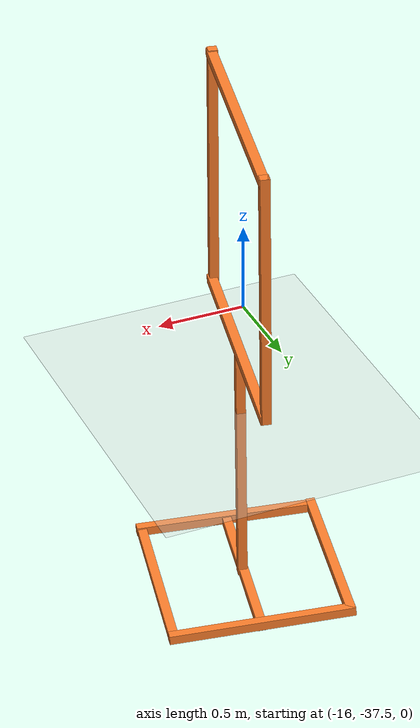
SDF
<sdf version="1.6">
 <world name="default">
  <model name="ground_plane">
   <static>1</static>
   <link name="link">
    <collision name="collision">
     <geometry><plane><normal>0 0 1</normal><size>100 100</size></plane></geometry>
     <surface><friction><ode><mu>100</mu><mu2>50</mu2></ode></friction></surface>
    </collision>
    <visual name="visual">
     <cast_shadows>0</cast_shadows>
     <geometry><plane><normal>0 0 1</normal><size>100 100</size></plane></geometry>
     <material>
      <script><uri>file://media/materials/scripts/gazebo.material</uri><name>Gazebo/Grey</name></script>
     </material>
    </visual>
    <velocity_decay><linear>0</linear><angular>0</angular></velocity_decay>
   </link>
  </model>
  <model name="closed_gate_clone_clone_0_clone">
   <link name="link">
    <inertial>
     <mass>1</mass>
     <inertia>
      <ixx>0.166667</ixx>
      <ixy>0</ixy>
      <ixz>0</ixz>
      <iyy>0.166667</iyy>
      <iyz>0</iyz>
      <izz>0.166667</izz>
     </inertia>
    </inertial>
    <pose>0.404756 -0.715724 1.41623 0 -0 0</pose>
    <visual name="visual">
     <geometry><box><size>0.05 0.05 1.4</size></box></geometry>
     <material>
      <script><name>Gazebo/Grey</name><uri>file://media/materials/scripts/gazebo.material</uri></script>
      <shader type="vertex"><normal_map>__default__</normal_map></shader>
      <ambient>0.976 0.484 0.164 1</ambient>
      <diffuse>0.976 0.484 0.164 1</diffuse>
      <specular>0.01 0.01 0.01 1</specular>
      <emissive>0 0 0 1</emissive>
     </material>
    </visual>
    <collision name="collision">
     <geometry><box><size>0.05 0.05 1.4</size></box></geometry>
     <surface>
      <friction>
       <ode><mu>1</mu><mu2>1</mu2><fdir1>0 0 0</fdir1><slip1>0</slip1><slip2>0</slip2></ode>
       <torsional>
        <coefficient>1</coefficient>
        <patch_radius>0</patch_radius>
        <surface_radius>0</surface_radius>
        <use_patch_radius>1</use_patch_radius>
        <ode><slip>0</slip></ode>
       </torsional>
      </friction>
      <bounce><restitution_coefficient>0</restitution_coefficient><threshold>1e+06</threshold></bounce>
      <contact>
       <collide_without_contact>0</collide_without_contact>
       <collide_without_contact_bitmask>1</collide_without_contact_bitmask>
       <collide_bitmask>1</collide_bitmask>
       <ode>
        <soft_cfm>0</soft_cfm>
        <soft_erp>0.2</soft_erp>
        <kp>1e+13</kp>
        <kd>1</kd>
        <max_vel>0.01</max_vel>
        <min_depth>0</min_depth>
       </ode>
       <bullet>
        <split_impulse>1</split_impulse>
        <split_impulse_penetration_threshold>-0.01</split_impulse_penetration_threshold>
        <soft_cfm>0</soft_cfm>
        <soft_erp>0.2</soft_erp>
        <kp>1e+13</kp>
        <kd>1</kd>
       </bullet>
      </contact>
     </surface>
    </collision>
   </link>
   <link name="link_clone_0_clone_0">
    <inertial>
     <mass>1</mass>
     <inertia>
      <ixx>0.166667</ixx>
      <ixy>0</ixy>
      <ixz>0</ixz>
      <iyy>0.166667</iyy>
      <iyz>0</iyz>
      <izz>0.166667</izz>
     </inertia>
    </inertial>
    <pose>1.11096 -0.693594 -0.667388 -1.57955 0.044957 -1.56415</pose>
    <visual name="visual">
     <geometry><box><size>0.05 0.05 1</size></box></geometry>
     <material>
      <script><name>Gazebo/Grey</name><uri>file://media/materials/scripts/gazebo.material</uri></script>
      <shader type="vertex"><normal_map>__default__</normal_map></shader>
      <ambient>0.976 0.484 0.164 1</ambient>
      <diffuse>0.976 0.484 0.164 1</diffuse>
      <specular>0.01 0.01 0.01 1</specular>
      <emissive>0 0 0 1</emissive>
     </material>
    </visual>
    <collision name="collision">
     <geometry><box><size>0.05 0.05 1</size></box></geometry>
     <surface>
      <friction>
       <ode><mu>1</mu><mu2>1</mu2><fdir1>0 0 0</fdir1><slip1>0</slip1><slip2>0</slip2></ode>
       <torsional>
        <coefficient>1</coefficient>
        <patch_radius>0</patch_radius>
        <surface_radius>0</surface_radius>
        <use_patch_radius>1</use_patch_radius>
        <ode><slip>0</slip></ode>
       </torsional>
      </friction>
      <bounce><restitution_coefficient>0</restitution_coefficient><threshold>1e+06</threshold></bounce>
      <contact>
       <collide_without_contact>0</collide_without_contact>
       <collide_without_contact_bitmask>1</collide_without_contact_bitmask>
       <collide_bitmask>1</collide_bitmask>
       <ode>
        <soft_cfm>0</soft_cfm>
        <soft_erp>0.2</soft_erp>
        <kp>1e+13</kp>
        <kd>1</kd>
        <max_vel>0.01</max_vel>
        <min_depth>0</min_depth>
       </ode>
       <bullet>
        <split_impulse>1</split_impulse>
        <split_impulse_penetration_threshold>-0.01</split_impulse_penetration_threshold>
        <soft_cfm>0</soft_cfm>
        <soft_erp>0.2</soft_erp>
        <kp>1e+13</kp>
        <kd>1</kd>
       </bullet>
      </contact>
     </surface>
    </collision>
   </link>
   <link name="link_clone_0_clone_0_clone">
    <inertial>
     <mass>1</mass>
     <inertia>
      <ixx>0.166667</ixx>
      <ixy>0</ixy>
      <ixz>0</ixz>
      <iyy>0.166667</iyy>
      <iyz>0</iyz>
      <izz>0.166667</izz>
     </inertia>
    </inertial>
    <pose>0.637485 -0.695511 -0.656732 -1.55146 -0.019345 0.017432</pose>
    <visual name="visual">
     <geometry><box><size>0.05 0.05 1</size></box></geometry>
     <material>
      <script><name>Gazebo/Grey</name><uri>file://media/materials/scripts/gazebo.material</uri></script>
      <shader type="vertex"><normal_map>__default__</normal_map></shader>
      <ambient>0.976 0.484 0.164 1</ambient>
      <diffuse>0.976 0.484 0.164 1</diffuse>
      <specular>0.01 0.01 0.01 1</specular>
      <emissive>0 0 0 1</emissive>
     </material>
    </visual>
    <collision name="collision">
     <geometry><box><size>0.05 0.05 1</size></box></geometry>
     <surface>
      <friction>
       <ode><mu>1</mu><mu2>1</mu2><fdir1>0 0 0</fdir1><slip1>0</slip1><slip2>0</slip2></ode>
       <torsional>
        <coefficient>1</coefficient>
        <patch_radius>0</patch_radius>
        <surface_radius>0</surface_radius>
        <use_patch_radius>1</use_patch_radius>
        <ode><slip>0</slip></ode>
       </torsional>
      </friction>
      <bounce><restitution_coefficient>0</restitution_coefficient><threshold>1e+06</threshold></bounce>
      <contact>
       <collide_without_contact>0</collide_without_contact>
       <collide_without_contact_bitmask>1</collide_without_contact_bitmask>
       <collide_bitmask>1</collide_bitmask>
       <ode>
        <soft_cfm>0</soft_cfm>
        <soft_erp>0.2</soft_erp>
        <kp>1e+13</kp>
        <kd>1</kd>
        <max_vel>0.01</max_vel>
        <min_depth>0</min_depth>
       </ode>
       <bullet>
        <split_impulse>1</split_impulse>
        <split_impulse_penetration_threshold>-0.01</split_impulse_penetration_threshold>
        <soft_cfm>0</soft_cfm>
        <soft_erp>0.2</soft_erp>
        <kp>1e+13</kp>
        <kd>1</kd>
       </bullet>
      </contact>
     </surface>
    </collision>
   </link>
   <link name="link_clone_0_clone_0_clone_0">
    <inertial>
     <mass>1</mass>
     <inertia>
      <ixx>0.166667</ixx>
      <ixy>0</ixy>
      <ixz>0</ixz>
      <iyy>0.166667</iyy>
      <iyz>0</iyz>
      <izz>0.166667</izz>
     </inertia>
    </inertial>
    <pose>1.12077 -1.16283 -0.677317 -1.57839 0.053451 -1.56287</pose>
    <visual name="visual">
     <geometry><box><size>0.05 0.05 1</size></box></geometry>
     <material>
      <script><name>Gazebo/Grey</name><uri>file://media/materials/scripts/gazebo.material</uri></script>
      <shader type="vertex"><normal_map>__default__</normal_map></shader>
      <ambient>0.976 0.484 0.164 1</ambient>
      <diffuse>0.976 0.484 0.164 1</diffuse>
      <specular>0.01 0.01 0.01 1</specular>
      <emissive>0 0 0 1</emissive>
     </material>
    </visual>
    <collision name="collision">
     <geometry><box><size>0.05 0.05 1</size></box></geometry>
     <surface>
      <friction>
       <ode><mu>1</mu><mu2>1</mu2><fdir1>0 0 0</fdir1><slip1>0</slip1><slip2>0</slip2></ode>
       <torsional>
        <coefficient>1</coefficient>
        <patch_radius>0</patch_radius>
        <surface_radius>0</surface_radius>
        <use_patch_radius>1</use_patch_radius>
        <ode><slip>0</slip></ode>
       </torsional>
      </friction>
      <bounce><restitution_coefficient>0</restitution_coefficient><threshold>1e+06</threshold></bounce>
      <contact>
       <collide_without_contact>0</collide_without_contact>
       <collide_without_contact_bitmask>1</collide_without_contact_bitmask>
       <collide_bitmask>1</collide_bitmask>
       <ode>
        <soft_cfm>0</soft_cfm>
        <soft_erp>0.2</soft_erp>
        <kp>1e+13</kp>
        <kd>1</kd>
        <max_vel>0.01</max_vel>
        <min_depth>0</min_depth>
       </ode>
       <bullet>
        <split_impulse>1</split_impulse>
        <split_impulse_penetration_threshold>-0.01</split_impulse_penetration_threshold>
        <soft_cfm>0</soft_cfm>
        <soft_erp>0.2</soft_erp>
        <kp>1e+13</kp>
        <kd>1</kd>
       </bullet>
      </contact>
     </surface>
    </collision>
   </link>
   <link name="link_clone_0_clone_0_clone_2">
    <inertial>
     <mass>1</mass>
     <inertia>
      <ixx>0.166667</ixx>
      <ixy>0</ixy>
      <ixz>0</ixz>
      <iyy>0.166667</iyy>
      <iyz>0</iyz>
      <izz>0.166667</izz>
     </inertia>
    </inertial>
    <pose>1.10088 -0.214462 -0.645898 -1.57451 0.053447 -1.56287</pose>
    <visual name="visual">
     <geometry><box><size>0.05 0.05 1</size></box></geometry>
     <material>
      <script><name>Gazebo/Grey</name><uri>file://media/materials/scripts/gazebo.material</uri></script>
      <shader type="vertex"><normal_map>__default__</normal_map></shader>
      <ambient>0.976 0.484 0.164 1</ambient>
      <diffuse>0.976 0.484 0.164 1</diffuse>
      <specular>0.01 0.01 0.01 1</specular>
      <emissive>0 0 0 1</emissive>
     </material>
    </visual>
    <collision name="collision">
     <geometry><box><size>0.05 0.05 1</size></box></geometry>
     <surface>
      <friction>
       <ode><mu>1</mu><mu2>1</mu2><fdir1>0 0 0</fdir1><slip1>0</slip1><slip2>0</slip2></ode>
       <torsional>
        <coefficient>1</coefficient>
        <patch_radius>0</patch_radius>
        <surface_radius>0</surface_radius>
        <use_patch_radius>1</use_patch_radius>
        <ode><slip>0</slip></ode>
       </torsional>
      </friction>
      <bounce><restitution_coefficient>0</restitution_coefficient><threshold>1e+06</threshold></bounce>
      <contact>
       <collide_without_contact>0</collide_without_contact>
       <collide_without_contact_bitmask>1</collide_without_contact_bitmask>
       <collide_bitmask>1</collide_bitmask>
       <ode>
        <soft_cfm>0</soft_cfm>
        <soft_erp>0.2</soft_erp>
        <kp>1e+13</kp>
        <kd>1</kd>
        <max_vel>0.01</max_vel>
        <min_depth>0</min_depth>
       </ode>
       <bullet>
        <split_impulse>1</split_impulse>
        <split_impulse_penetration_threshold>-0.01</split_impulse_penetration_threshold>
        <soft_cfm>0</soft_cfm>
        <soft_erp>0.2</soft_erp>
        <kp>1e+13</kp>
        <kd>1</kd>
       </bullet>
      </contact>
     </surface>
    </collision>
   </link>
   <link name="link_clone_0_clone_0_clone_clone">
    <inertial>
     <mass>1</mass>
     <inertia>
      <ixx>0.166667</ixx>
      <ixy>0</ixy>
      <ixz>0</ixz>
      <iyy>0.166667</iyy>
      <iyz>0</iyz>
      <izz>0.166667</izz>
     </inertia>
    </inertial>
    <pose>1.59453 -0.684923 -0.663241 -1.53838 -0.023075 0.018345</pose>
    <visual name="visual">
     <geometry><box><size>0.05 0.05 1</size></box></geometry>
     <material>
      <script><name>Gazebo/Grey</name><uri>file://media/materials/scripts/gazebo.material</uri></script>
      <shader type="vertex"><normal_map>__default__</normal_map></shader>
      <ambient>0.976 0.484 0.164 1</ambient>
      <diffuse>0.976 0.484 0.164 1</diffuse>
      <specular>0.01 0.01 0.01 1</specular>
      <emissive>0 0 0 1</emissive>
     </material>
    </visual>
    <collision name="collision">
     <geometry><box><size>0.05 0.05 1</size></box></geometry>
     <surface>
      <friction>
       <ode><mu>1</mu><mu2>1</mu2><fdir1>0 0 0</fdir1><slip1>0</slip1><slip2>0</slip2></ode>
       <torsional>
        <coefficient>1</coefficient>
        <patch_radius>0</patch_radius>
        <surface_radius>0</surface_radius>
        <use_patch_radius>1</use_patch_radius>
        <ode><slip>0</slip></ode>
       </torsional>
      </friction>
      <bounce><restitution_coefficient>0</restitution_coefficient><threshold>1e+06</threshold></bounce>
      <contact>
       <collide_without_contact>0</collide_without_contact>
       <collide_without_contact_bitmask>1</collide_without_contact_bitmask>
       <collide_bitmask>1</collide_bitmask>
       <ode>
        <soft_cfm>0</soft_cfm>
        <soft_erp>0.2</soft_erp>
        <kp>1e+13</kp>
        <kd>1</kd>
        <max_vel>0.01</max_vel>
        <min_depth>0</min_depth>
       </ode>
       <bullet>
        <split_impulse>1</split_impulse>
        <split_impulse_penetration_threshold>-0.01</split_impulse_penetration_threshold>
        <soft_cfm>0</soft_cfm>
        <soft_erp>0.2</soft_erp>
        <kp>1e+13</kp>
        <kd>1</kd>
       </bullet>
      </contact>
     </surface>
    </collision>
   </link>
   <link name="link_clone_0_clone_1">
    <inertial>
     <mass>1</mass>
     <inertia>
      <ixx>0.166667</ixx>
      <ixy>0</ixy>
      <ixz>0</ixz>
      <iyy>0.166667</iyy>
      <iyz>0</iyz>
      <izz>0.166667</izz>
     </inertia>
    </inertial>
    <pose>1.08198 -0.717602 0.744079 -1.56201 0.04483 -1.56244</pose>
    <visual name="visual">
     <geometry><box><size>0.05 0.05 1.4</size></box></geometry>
     <material>
      <script><name>Gazebo/Grey</name><uri>file://media/materials/scripts/gazebo.material</uri></script>
      <shader type="vertex"><normal_map>__default__</normal_map></shader>
      <ambient>0.976 0.484 0.164 1</ambient>
      <diffuse>0.976 0.484 0.164 1</diffuse>
      <specular>0.01 0.01 0.01 1</specular>
      <emissive>0 0 0 1</emissive>
     </material>
    </visual>
    <collision name="collision">
     <geometry><box><size>0.05 0.05 1.4</size></box></geometry>
     <surface>
      <friction>
       <ode><mu>1</mu><mu2>1</mu2><fdir1>0 0 0</fdir1><slip1>0</slip1><slip2>0</slip2></ode>
       <torsional>
        <coefficient>1</coefficient>
        <patch_radius>0</patch_radius>
        <surface_radius>0</surface_radius>
        <use_patch_radius>1</use_patch_radius>
        <ode><slip>0</slip></ode>
       </torsional>
      </friction>
      <bounce><restitution_coefficient>0</restitution_coefficient><threshold>1e+06</threshold></bounce>
      <contact>
       <collide_without_contact>0</collide_without_contact>
       <collide_without_contact_bitmask>1</collide_without_contact_bitmask>
       <collide_bitmask>1</collide_bitmask>
       <ode>
        <soft_cfm>0</soft_cfm>
        <soft_erp>0.2</soft_erp>
        <kp>1e+13</kp>
        <kd>1</kd>
        <max_vel>0.01</max_vel>
        <min_depth>0</min_depth>
       </ode>
       <bullet>
        <split_impulse>1</split_impulse>
        <split_impulse_penetration_threshold>-0.01</split_impulse_penetration_threshold>
        <soft_cfm>0</soft_cfm>
        <soft_erp>0.2</soft_erp>
        <kp>1e+13</kp>
        <kd>1</kd>
       </bullet>
      </contact>
     </surface>
    </collision>
   </link>
   <link name="link_clone_0_clone_1_clone">
    <inertial>
     <mass>1</mass>
     <inertia>
      <ixx>0.166667</ixx>
      <ixy>0</ixy>
      <ixz>0</ixz>
      <iyy>0.166667</iyy>
      <iyz>0</iyz>
      <izz>0.166667</izz>
     </inertia>
    </inertial>
    <pose>1.07529 -0.719849 2.09328 -1.55888 0.053444 -1.57124</pose>
    <visual name="visual">
     <geometry><box><size>0.05 0.05 1.4</size></box></geometry>
     <material>
      <script><name>Gazebo/Grey</name><uri>file://media/materials/scripts/gazebo.material</uri></script>
      <shader type="vertex"><normal_map>__default__</normal_map></shader>
      <ambient>0.976 0.484 0.164 1</ambient>
      <diffuse>0.976 0.484 0.164 1</diffuse>
      <specular>0.01 0.01 0.01 1</specular>
      <emissive>0 0 0 1</emissive>
     </material>
    </visual>
    <collision name="collision">
     <geometry><box><size>0.05 0.05 1.4</size></box></geometry>
     <surface>
      <friction>
       <ode><mu>1</mu><mu2>1</mu2><fdir1>0 0 0</fdir1><slip1>0</slip1><slip2>0</slip2></ode>
       <torsional>
        <coefficient>1</coefficient>
        <patch_radius>0</patch_radius>
        <surface_radius>0</surface_radius>
        <use_patch_radius>1</use_patch_radius>
        <ode><slip>0</slip></ode>
       </torsional>
      </friction>
      <bounce><restitution_coefficient>0</restitution_coefficient><threshold>1e+06</threshold></bounce>
      <contact>
       <collide_without_contact>0</collide_without_contact>
       <collide_without_contact_bitmask>1</collide_without_contact_bitmask>
       <collide_bitmask>1</collide_bitmask>
       <ode>
        <soft_cfm>0</soft_cfm>
        <soft_erp>0.2</soft_erp>
        <kp>1e+13</kp>
        <kd>1</kd>
        <max_vel>0.01</max_vel>
        <min_depth>0</min_depth>
       </ode>
       <bullet>
        <split_impulse>1</split_impulse>
        <split_impulse_penetration_threshold>-0.01</split_impulse_penetration_threshold>
        <soft_cfm>0</soft_cfm>
        <soft_erp>0.2</soft_erp>
        <kp>1e+13</kp>
        <kd>1</kd>
       </bullet>
      </contact>
     </surface>
    </collision>
   </link>
   <link name="link_clone_1">
    <inertial>
     <mass>1</mass>
     <inertia>
      <ixx>0.166667</ixx>
      <ixy>0</ixy>
      <ixz>0</ixz>
      <iyy>0.166667</iyy>
      <iyz>0</iyz>
      <izz>0.166667</izz>
     </inertia>
    </inertial>
    <pose>1.11167 -0.706269 0.02254 0.008527 -0.003582 0.001077</pose>
    <visual name="visual">
     <geometry><box><size>0.05 0.05 1.4</size></box></geometry>
     <material>
      <script><name>Gazebo/Grey</name><uri>file://media/materials/scripts/gazebo.material</uri></script>
      <shader type="vertex"><normal_map>__default__</normal_map></shader>
      <ambient>0.976 0.484 0.164 1</ambient>
      <diffuse>0.976 0.484 0.164 1</diffuse>
      <specular>0.01 0.01 0.01 1</specular>
      <emissive>0 0 0 1</emissive>
     </material>
    </visual>
    <collision name="collision">
     <geometry><box><size>0.05 0.05 1.4</size></box></geometry>
     <surface>
      <friction>
       <ode><mu>1</mu><mu2>1</mu2><fdir1>0 0 0</fdir1><slip1>0</slip1><slip2>0</slip2></ode>
       <torsional>
        <coefficient>1</coefficient>
        <patch_radius>0</patch_radius>
        <surface_radius>0</surface_radius>
        <use_patch_radius>1</use_patch_radius>
        <ode><slip>0</slip></ode>
       </torsional>
      </friction>
      <bounce><restitution_coefficient>0</restitution_coefficient><threshold>1e+06</threshold></bounce>
      <contact>
       <collide_without_contact>0</collide_without_contact>
       <collide_without_contact_bitmask>1</collide_without_contact_bitmask>
       <collide_bitmask>1</collide_bitmask>
       <ode>
        <soft_cfm>0</soft_cfm>
        <soft_erp>0.2</soft_erp>
        <kp>1e+13</kp>
        <kd>1</kd>
        <max_vel>0.01</max_vel>
        <min_depth>0</min_depth>
       </ode>
       <bullet>
        <split_impulse>1</split_impulse>
        <split_impulse_penetration_threshold>-0.01</split_impulse_penetration_threshold>
        <soft_cfm>0</soft_cfm>
        <soft_erp>0.2</soft_erp>
        <kp>1e+13</kp>
        <kd>1</kd>
       </bullet>
      </contact>
     </surface>
    </collision>
   </link>
   <link name="link_clone_7">
    <inertial>
     <mass>1</mass>
     <inertia>
      <ixx>0.166667</ixx>
      <ixy>0</ixy>
      <ixz>0</ixz>
      <iyy>0.166667</iyy>
      <iyz>0</iyz>
      <izz>0.166667</izz>
     </inertia>
    </inertial>
    <pose>1.75876 -0.711707 1.42733 0.008527 -0.003582 0.001077</pose>
    <visual name="visual">
     <geometry><box><size>0.05 0.05 1.4</size></box></geometry>
     <material>
      <script><name>Gazebo/Grey</name><uri>file://media/materials/scripts/gazebo.material</uri></script>
      <shader type="vertex"><normal_map>__default__</normal_map></shader>
      <ambient>0.976 0.484 0.164 1</ambient>
      <diffuse>0.976 0.484 0.164 1</diffuse>
      <specular>0.01 0.01 0.01 1</specular>
      <emissive>0 0 0 1</emissive>
     </material>
    </visual>
    <collision name="collision">
     <geometry><box><size>0.05 0.05 1.4</size></box></geometry>
     <surface>
      <friction>
       <ode><mu>1</mu><mu2>1</mu2><fdir1>0 0 0</fdir1><slip1>0</slip1><slip2>0</slip2></ode>
       <torsional>
        <coefficient>1</coefficient>
        <patch_radius>0</patch_radius>
        <surface_radius>0</surface_radius>
        <use_patch_radius>1</use_patch_radius>
        <ode><slip>0</slip></ode>
       </torsional>
      </friction>
      <bounce><restitution_coefficient>0</restitution_coefficient><threshold>1e+06</threshold></bounce>
      <contact>
       <collide_without_contact>0</collide_without_contact>
       <collide_without_contact_bitmask>1</collide_without_contact_bitmask>
       <collide_bitmask>1</collide_bitmask>
       <ode>
        <soft_cfm>0</soft_cfm>
        <soft_erp>0.2</soft_erp>
        <kp>1e+13</kp>
        <kd>1</kd>
        <max_vel>0.01</max_vel>
        <min_depth>0</min_depth>
       </ode>
       <bullet>
        <split_impulse>1</split_impulse>
        <split_impulse_penetration_threshold>-0.01</split_impulse_penetration_threshold>
        <soft_cfm>0</soft_cfm>
        <soft_erp>0.2</soft_erp>
        <kp>1e+13</kp>
        <kd>1</kd>
       </bullet>
      </contact>
     </surface>
    </collision>
   </link>
   <static>1</static>
   <pose>-16.5144 -37.5097 -0.36646 0 -0 1.34807</pose>
  </model>
 </world>
</sdf>
